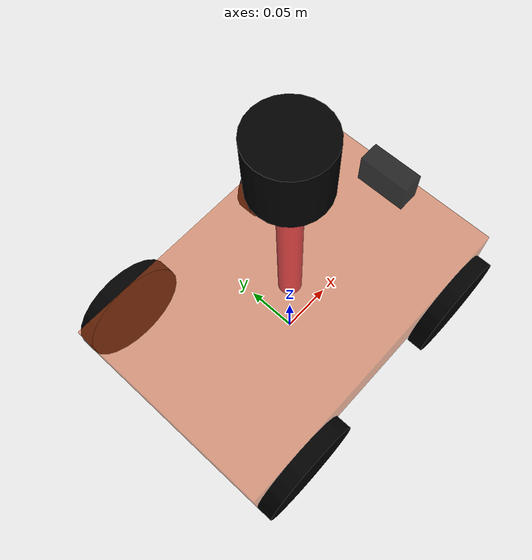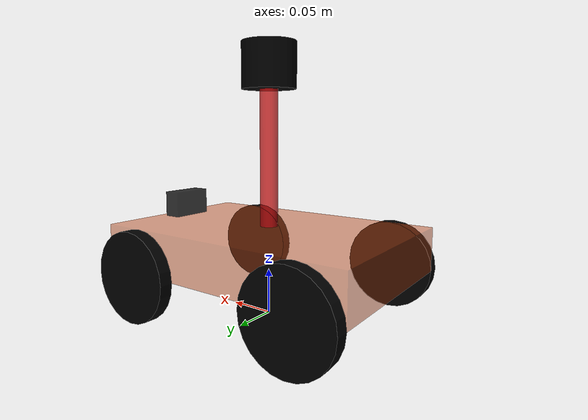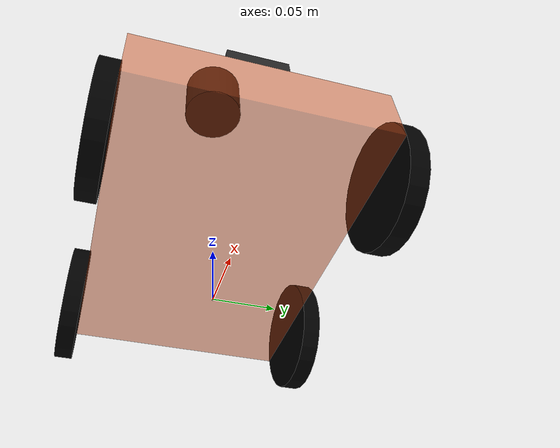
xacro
<robot name="car_camera_laser" xmlns:xacro="http://wiki.ros.org/xacro">
<!-- include i file -->
<xacro:include filename="head.xacro"/>
<xacro:include filename="car_body.xacro"/>
<xacro:include filename="car_camera.xacro"/>
<xacro:include filename="car_laser.xacro"/>

<xacro:include filename="gazebo/move.xacro"/>
<xacro:include filename="gazebo/laser.xacro"/>
<xacro:include filename="gazebo/camera.xacro"/>
<xacro:include filename="gazebo/kinect.xacro"/>

</robot>

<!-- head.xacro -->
<robot name="base" xmlns:xacro="http://wiki.ros.org/xacro">
    <!-- Macro for inertia matrix -->
    <xacro:macro name="sphere_inertial_matrix" params="m r">
        <inertial>
            <mass value="${m}" />
            <inertia ixx="${2*m*r*r/5}" ixy="0" ixz="0"
                iyy="${2*m*r*r/5}" iyz="0"
                izz="${2*m*r*r/5}" />
        </inertial>
    </xacro:macro>

    <xacro:macro name="cylinder_inertial_matrix" params="m r h">
        <inertial>
            <mass value="${m}" />
            <inertia ixx="${m*(3*r*r+h*h)/12}" ixy="0" ixz="0"
                iyy="${m*(3*r*r+h*h)/12}" iyz="0"
                izz="${m*r*r/2}" />
        </inertial>
    </xacro:macro>

    <xacro:macro name="Box_inertial_matrix" params="m l w h">
        <inertial>
            <mass value="${m}" />
            <inertia ixx="${m*(w*w + l*l)/12}" ixy="0" ixz="0"
                iyy="${m*(w*w + l*l)/12}" iyz="0"
                izz="${m*(w*w + h*h)/12}" />
        </inertial>
    </xacro:macro>
</robot>

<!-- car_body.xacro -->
<robot name="mycar" xmlns:xacro="http://wiki.ros.org/xacro">
<!-- parameter -->
        <xacro:property name="PI" value="3.1415926"/>
        <material name="black">
            <color rgba="0 0 0 1" />
        </material >
        <material name="yellow">
            <color rgba="0.8 0.3 0.1 0.5"/>
        </material>

<!-- creat foot_print -->
              <xacro:macro name="create_sphere"  params="name radius  colorname mass">
                <link name="${name}">
                        <visual>
                                <geometry>
                                        <sphere radius="${radius}"/>
                                </geometry>
                                <material name="${colorname}"/>
                                <origin xyz="0 0 0" rpy="0 0 0"/>
                        </visual>
                </link>
        </xacro:macro>

        <xacro:create_sphere name="foot_print" radius="0.001" colorname="black" mass="0.01"/>

<!-- creat body link -->
         <xacro:property name="body_width" value="0.2"/>
        <xacro:property name="body_length" value="0.3"/>
        <xacro:property name="body_height" value="0.05"/>
        <xacro:property  name="body_mass" value="1" />

        <link name="body">
                        <visual>
                                        <geometry>
                                                        <box size="${body_length} ${body_width} ${body_height}"/>
                                        </geometry>
                                        <material name="yellow"/>
                                        <origin xyz="0 0 0" rpy="0 0 0"/>
                        </visual>
                        <collision>
                                        <geometry>
                                                        <box size="${body_length} ${body_width} ${body_height}"/>
                                        </geometry>
                                        <origin xyz="0 0 0" rpy="0 0 0"/>
                        </collision>
                        <xacro:Box_inertial_matrix m="${body_mass}" w="${body_width}" l="${body_length}" h="${body_height}"/>
        </link>

 <!-- create  joint  body2foot_print -->
<xacro:property name="vertical2ground_distance" value="0.05"/>

<joint name="body2foot_print" type="fixed">
        <parent link="foot_print"/>
        <child link="body"/>
        <origin xyz="0 0 ${body_height/2+vertical2ground_distance}" rpy="0 0 0"/>
</joint>

<!-- creat wheel link -->
        <xacro:macro name="create_cylinder"  params="name radius length colorname mass">
                <link name="${name}">
                        <visual>
                                <geometry>
                                        <cylinder radius="${radius}" length="${length}"/>
                                </geometry>
                                <material name="${colorname}"/>
                                <origin xyz="0 0 0" rpy="0 0 0"/>
                        </visual>
                        <collision>
                                <geometry>
                                        <cylinder radius="${radius}" length="${length}"/>
                                </geometry>
                                <origin xyz="0 0 0" rpy="0 0 0"/>
                        </collision>
                      <xacro:cylinder_inertial_matrix m="${mass}" r="${radius}" h="${length}" />
                </link>
        </xacro:macro>

        <xacro:property name="wheel_radius" value="0.05"/>
        <xacro:property name="wheel_length" value="0.015"/>
        <xacro:property name="wheel_mass" value="0.05" />

        <xacro:create_cylinder name="wheel_front_right" radius="${wheel_radius}" length="${wheel_length}" colorname="black" mass="${wheel_mass}"/>
        <xacro:create_cylinder name="wheel_front_left" radius="${wheel_radius}" length="${wheel_length}" colorname="black" mass="${wheel_mass}"/>
        <xacro:create_cylinder  name="wheel_behind_right" radius="${wheel_radius}" length="${wheel_length}" colorname="black" mass="${wheel_mass}"/>
        <xacro:create_cylinder name="wheel_behind_left" radius="${wheel_radius}" length="${wheel_length}" colorname="black" mass="${wheel_mass}"/>

<!-- create joint wheel2body -->
<xacro:property name="wheel_distance" value="${body_length/2-wheel_radius}"/>

 <xacro:macro name="wheel2body" params="name xflag yflag">
                <joint name="${name}2body" type="continuous">
                        <parent link="body"/>
                        <child link="${name}"/>
                        <origin xyz="${xflag}${wheel_distance} ${yflag}${body_width/2+wheel_length/2} ${wheel_radius-vertical2ground_distance-body_height/2}" rpy="${-PI/2} 0 0"/>
                        <axis xyz="0 0 1"/>
                </joint>
</xacro:macro>

<xacro:wheel2body name="wheel_front_right" xflag="+" yflag="-"/>
<xacro:wheel2body name="wheel_behind_right" xflag="-" yflag="-"/>
<xacro:wheel2body name="wheel_front_left" xflag="+" yflag="+"/>
<xacro:wheel2body name="wheel_behind_left" xflag="-" yflag="+"/>

<gazebo reference="body">
                <material> Gazebo/Yellow</material>
</gazebo>

<gazebo reference="wheel_front_right">
                <material>Gazebo/Black</material>
                    <mu1>1000000</mu1>
		    <mu2>1000000</mu2>
		    <kp>1000</kp>
		    <kd>1000</kd>
</gazebo>

<gazebo reference="wheel_behind_right">
                <material>Gazebo/Black</material>
                         <mu1>1000000</mu1>
		    <mu2>1000000</mu2>
		    <kp>1000</kp>
		    <kd>1000</kd>
</gazebo>

<gazebo reference="wheel_front_left">
                <material>Gazebo/Black</material>
                         <mu1>1000000</mu1>
		    <mu2>1000000</mu2>
		    <kp>1000</kp>
		    <kd>1000</kd>
</gazebo>

<gazebo reference="wheel_behind_left">
                <material>Gazebo/Black</material>
                         <mu1>1000000</mu1>
		    <mu2>1000000</mu2>
		    <kp>1000</kp>
		    <kd>1000</kd>
</gazebo>

</robot>

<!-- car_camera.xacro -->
<robot name="camera" xmlns:xacro="http://wiki.ros.org/xacro">
<!-- creater camera-->
<!-- 1.parameters -->
<xacro:property name="camera_x" value="0.02" />
<xacro:property name="camera_y" value="0.05" />
<xacro:property name="camera_z" value="0.03" />
<xacro:property name="camera_mass" value="0.01"/>
<xacro:property name="joint_camera_x" value="${body_length/2-camera_x}" />
<xacro:property name="joint_camera_y" value="0" />
<xacro:property name="joint_camera_z" value="${body_height/2+camera_z/2}" />

<!-- link and joint -->
<link name="camera">
        <visual>
                <geometry>
                        <box size="${camera_x} ${camera_y} ${camera_z}"/>
                </geometry>

                <material name="black">
                        <color rgba="0 0 0 0.8"/>
                </material>

        </visual>
        <collision>
                <geometry>
                        <box size="${camera_x} ${camera_y} ${camera_z}"/>
                </geometry>
        </collision>
        <xacro:Box_inertial_matrix m="${camera_mass}" l="${camera_x}" w="${camera_y}" h="${camera_z}"/>
</link>

<joint name="camera2body" type="fixed">
        <parent link="body"/>
        <child link="camera"/>
        <origin xyz="${joint_camera_x} ${joint_camera_y} ${joint_camera_z}" rpy="0 0 0"/>
</joint>

<gazebo reference="camera">
        <material>Gazebo/Blue</material>
</gazebo>

</robot>

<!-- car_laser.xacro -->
<robot name="laser" xmlns:xacro="http://wiki.ros.org/xacro">
<!-- laser -->
<!-- parameter s-->
<xacro:property name="support_radius" value="0.01"/>
<xacro:property name="support_length" value="0.15"/>
<xacro:property name="laser_radius" value="0.03"/>
<xacro:property name="laser_length" value="0.05"/>
<xacro:property name="support_mass" value="0.02"/>
<xacro:property name="laser_mass" value="0.1"/>

<xacro:property name="joint_support_x" value="0"/>
<xacro:property name="joint_support_y" value="0"/>
<xacro:property name="joint_support_z" value="${support_length/2+body_height/2}"/>
<xacro:property name="joint_laser_z" value="${support_length/2+laser_length/2}"/>

<link name="support" >
        <visual>
                <geometry>
                        <cylinder radius="${support_radius}" length="${support_length}"/>
                </geometry>
                <material name="red">
                        <color rgba="0.9 0.1 0.1 0.8"/>
                </material>
        </visual>
        <collision>
                   <geometry>
                        <cylinder radius="${support_radius}" length="${support_length}"/>
                </geometry>
        </collision>
        <xacro:cylinder_inertial_matrix r="${support_radius}" m="${support_mass}" h="${support_length}"/>
</link>

<link name="laser" >
        <visual>
                <geometry>
                        <cylinder radius="${laser_radius}" length="${laser_length}"/>
                </geometry>
                <material name="black"/>
        </visual>
          <collision>
                    <geometry>
                        <cylinder radius="${laser_radius}" length="${laser_length}"/>
                </geometry>
        </collision>
        <xacro:cylinder_inertial_matrix r="${laser_radius}" m="${laser_mass}" h="${laser_length}"/>
</link>

<!-- joint -->

<joint name="support2body" type="fixed">
        <parent link="body"/>
        <child link="support"/>
        <origin xyz="0 0 ${joint_support_z}" rpy="0 0 0"/>
</joint>

<joint name="laser2support" type="fixed">
        <parent link="support"/>
        <child link = "laser"/>
        <origin xyz="0 0 ${joint_laser_z}" rpy="0 0 0"/>
        </joint>

        <gazebo reference="support">
                <material>Gazebo/White</material>
        </gazebo>

          <gazebo reference="laser">
                <material>Gazebo/Black</material>
        </gazebo>
</robot>
